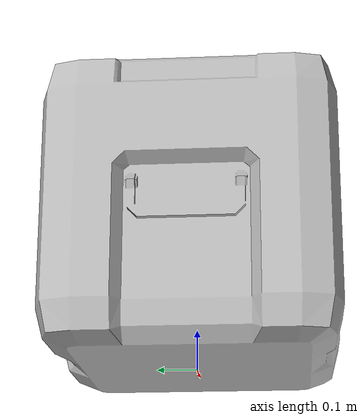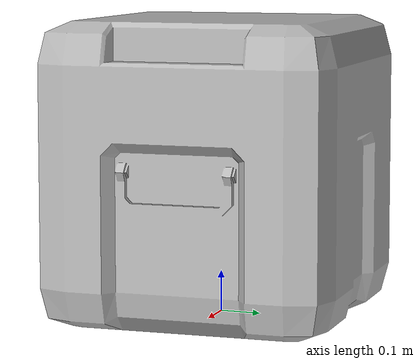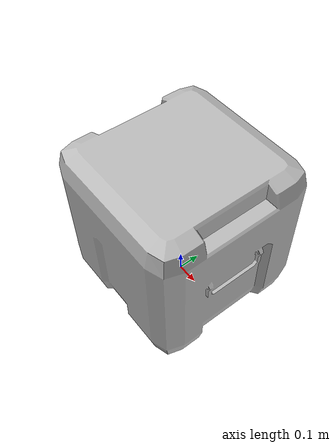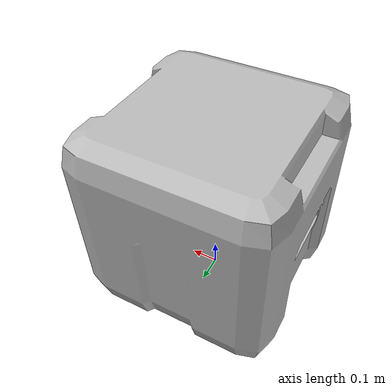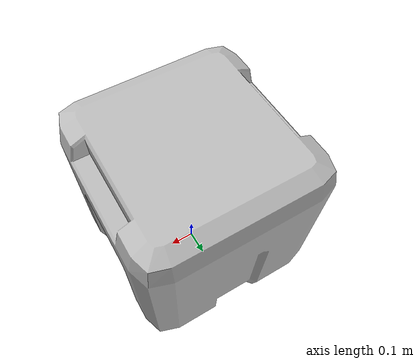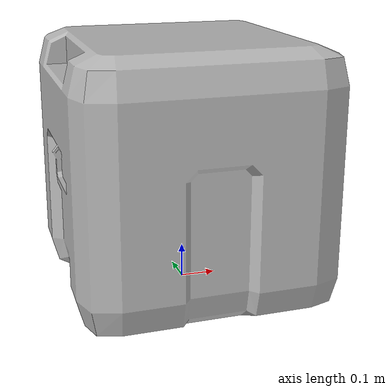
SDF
<?xml version="1.0" ?>
<sdf version="1.5">
  <model name="mars_crate">
    <static>true</static>
    <link name="link">
      <collision name="collision">
        <pose>0 0 0.36 0 0 0</pose>
        <geometry>
          <box>
            <size>0.72 0.72 0.72</size>
          </box>
        </geometry>
      </collision>
      <visual name="visual">
        <geometry>
          <mesh>
            <uri>model://mars_crate/meshes/crate.obj</uri>
            <scale>0.03 0.03 0.03</scale>
          </mesh>
        </geometry>
      </visual>
    </link>
  </model>
</sdf>
